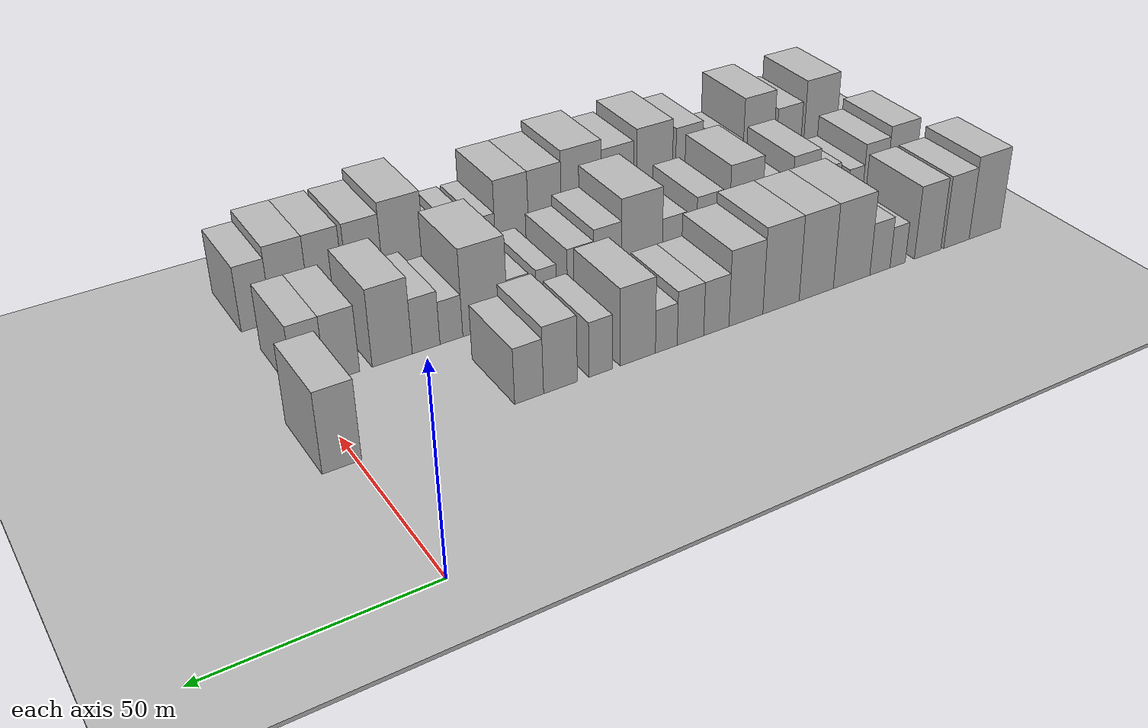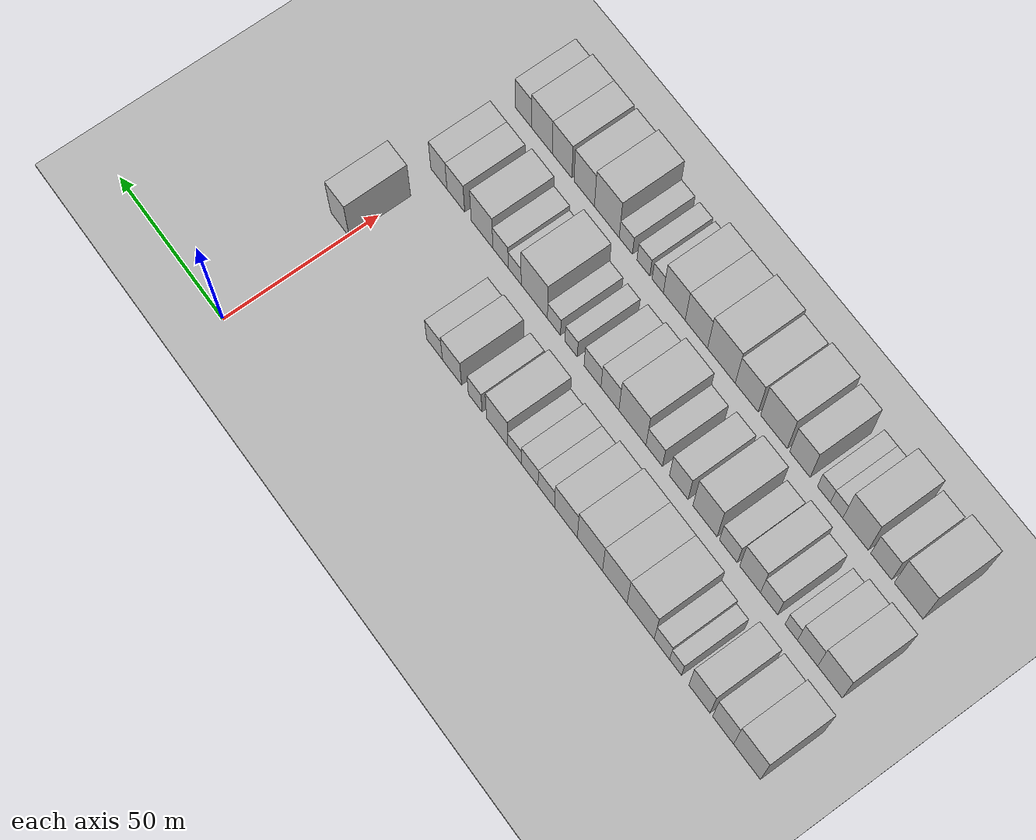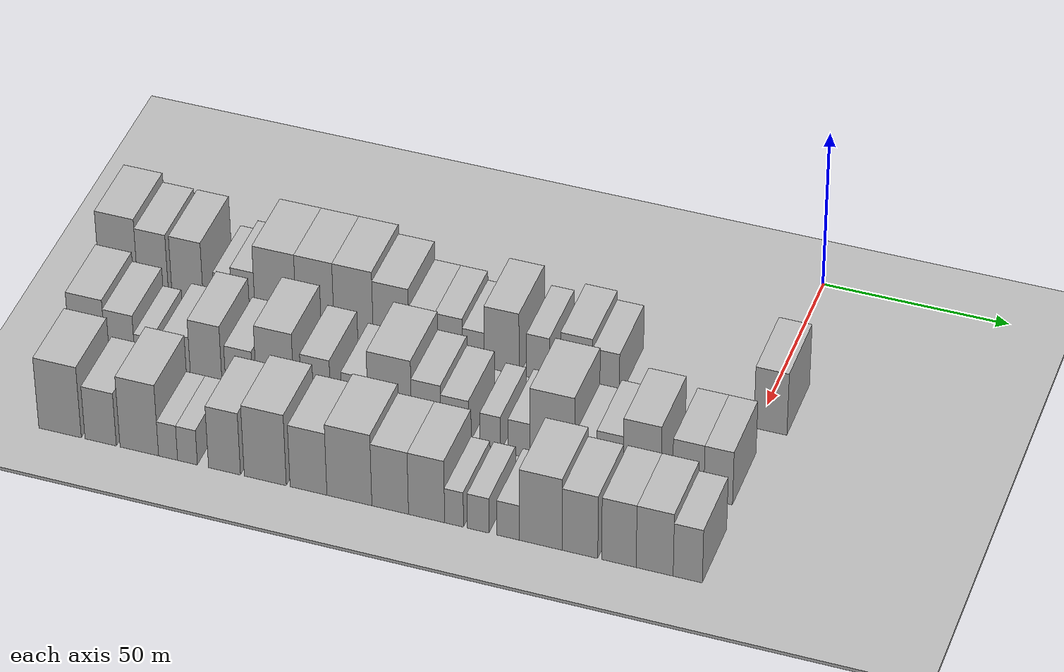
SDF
<sdf version="1.6">
 <world name="default">
  <include><name>ground_plane_1</name><uri>model://HANNAS_ground_plane</uri></include>
  <include>
   <name>ground_plane_2</name>
   <uri>model://HANNAS_ground_plane</uri>
   <pose>100 0 0  0 0 0</pose>
  </include>
  <model name="building_20">
   <static>1</static>
   <pose>50.0000 -173.5336 0 0.000000 0.000000 0.000000</pose>
   <link name="link">
    <pose>0 0 12.00 0 0 0</pose>
    <collision name="collision"><geometry><box><size>20.0000 10.8174 24.0000</size></box></geometry></collision>
    <visual name="visual">
     <cast_shadows>0</cast_shadows>
     <geometry><box><size>20.0000 10.8174 24.0000</size></box></geometry>
     <material>
      <script>
       <uri>model://HANNAS_wall/materials/scripts</uri>
       <uri>model://HANNAS_wall/materials/textures</uri>
       <name>vrc/HANNAS_wall</name>
      </script>
     </material>
    </visual>
   </link>
  </model>
  <model name="building_21">
   <static>1</static>
   <pose>50.0000 -163.8275 0 0.000000 0.000000 0.000000</pose>
   <link name="link">
    <pose>0 0 10.50 0 0 0</pose>
    <collision name="collision"><geometry><box><size>20.0000 8.5949 21.0000</size></box></geometry></collision>
    <visual name="visual">
     <cast_shadows>0</cast_shadows>
     <geometry><box><size>20.0000 8.5949 21.0000</size></box></geometry>
     <material>
      <script>
       <uri>model://HANNAS_wall/materials/scripts</uri>
       <uri>model://HANNAS_wall/materials/textures</uri>
       <name>vrc/HANNAS_wall</name>
      </script>
     </material>
    </visual>
   </link>
  </model>
  <model name="building_22">
   <static>1</static>
   <pose>50.0000 -154.1561 0 0.000000 0.000000 0.000000</pose>
   <link name="link">
    <pose>0 0 10.50 0 0 0</pose>
    <collision name="collision"><geometry><box><size>20.0000 8.7478 21.0000</size></box></geometry></collision>
    <visual name="visual">
     <cast_shadows>0</cast_shadows>
     <geometry><box><size>20.0000 8.7478 21.0000</size></box></geometry>
     <material>
      <script>
       <uri>model://HANNAS_wall/materials/scripts</uri>
       <uri>model://HANNAS_wall/materials/textures</uri>
       <name>vrc/HANNAS_wall</name>
      </script>
     </material>
    </visual>
   </link>
  </model>
  <model name="building_23">
   <static>1</static>
   <pose>50.0000 -144.3071 0 0.000000 0.000000 0.000000</pose>
   <link name="link">
    <pose>0 0 6.00 0 0 0</pose>
    <collision name="collision"><geometry><box><size>20.0000 4.9503 12.0000</size></box></geometry></collision>
    <visual name="visual">
     <cast_shadows>0</cast_shadows>
     <geometry><box><size>20.0000 4.9503 12.0000</size></box></geometry>
     <material>
      <script>
       <uri>model://HANNAS_wall/materials/scripts</uri>
       <uri>model://HANNAS_wall/materials/textures</uri>
       <name>vrc/HANNAS_wall</name>
      </script>
     </material>
    </visual>
   </link>
  </model>
  <model name="building_24">
   <static>1</static>
   <pose>50.0000 -138.6145 0 0.000000 0.000000 0.000000</pose>
   <link name="link">
    <pose>0 0 7.50 0 0 0</pose>
    <collision name="collision"><geometry><box><size>20.0000 6.4349 15.0000</size></box></geometry></collision>
    <visual name="visual">
     <cast_shadows>0</cast_shadows>
     <geometry><box><size>20.0000 6.4349 15.0000</size></box></geometry>
     <material>
      <script>
       <uri>model://HANNAS_wall/materials/scripts</uri>
       <uri>model://HANNAS_wall/materials/textures</uri>
       <name>vrc/HANNAS_wall</name>
      </script>
     </material>
    </visual>
   </link>
  </model>
  <model name="building_25">
   <static>1</static>
   <pose>50.0000 -129.6808 0 0.000000 0.000000 0.000000</pose>
   <link name="link">
    <pose>0 0 12.00 0 0 0</pose>
    <collision name="collision"><geometry><box><size>20.0000 11.4326 24.0000</size></box></geometry></collision>
    <visual name="visual">
     <cast_shadows>0</cast_shadows>
     <geometry><box><size>20.0000 11.4326 24.0000</size></box></geometry>
     <material>
      <script>
       <uri>model://HANNAS_wall/materials/scripts</uri>
       <uri>model://HANNAS_wall/materials/textures</uri>
       <name>vrc/HANNAS_wall</name>
      </script>
     </material>
    </visual>
   </link>
  </model>
  <model name="building_26">
   <static>1</static>
   <pose>50.0000 -118.7678 0 0.000000 0.000000 0.000000</pose>
   <link name="link">
    <pose>0 0 12.00 0 0 0</pose>
    <collision name="collision"><geometry><box><size>20.0000 10.3935 24.0000</size></box></geometry></collision>
    <visual name="visual">
     <cast_shadows>0</cast_shadows>
     <geometry><box><size>20.0000 10.3935 24.0000</size></box></geometry>
     <material>
      <script>
       <uri>model://HANNAS_wall/materials/scripts</uri>
       <uri>model://HANNAS_wall/materials/textures</uri>
       <name>vrc/HANNAS_wall</name>
      </script>
     </material>
    </visual>
   </link>
  </model>
  <model name="building_27">
   <static>1</static>
   <pose>50.0000 -108.1884 0 0.000000 0.000000 0.000000</pose>
   <link name="link">
    <pose>0 0 12.00 0 0 0</pose>
    <collision name="collision"><geometry><box><size>20.0000 10.7653 24.0000</size></box></geometry></collision>
    <visual name="visual">
     <cast_shadows>0</cast_shadows>
     <geometry><box><size>20.0000 10.7653 24.0000</size></box></geometry>
     <material>
      <script>
       <uri>model://HANNAS_wall/materials/scripts</uri>
       <uri>model://HANNAS_wall/materials/textures</uri>
       <name>vrc/HANNAS_wall</name>
      </script>
     </material>
    </visual>
   </link>
  </model>
  <model name="building_28">
   <static>1</static>
   <pose>50.0000 -97.9001 0 0.000000 0.000000 0.000000</pose>
   <link name="link">
    <pose>0 0 10.50 0 0 0</pose>
    <collision name="collision"><geometry><box><size>20.0000 9.8113 21.0000</size></box></geometry></collision>
    <visual name="visual">
     <cast_shadows>0</cast_shadows>
     <geometry><box><size>20.0000 9.8113 21.0000</size></box></geometry>
     <material>
      <script>
       <uri>model://HANNAS_wall/materials/scripts</uri>
       <uri>model://HANNAS_wall/materials/textures</uri>
       <name>vrc/HANNAS_wall</name>
      </script>
     </material>
    </visual>
   </link>
  </model>
  <model name="building_29">
   <static>1</static>
   <pose>50.0000 -89.4312 0 0.000000 0.000000 0.000000</pose>
   <link name="link">
    <pose>0 0 7.50 0 0 0</pose>
    <collision name="collision"><geometry><box><size>20.0000 7.1264 15.0000</size></box></geometry></collision>
    <visual name="visual">
     <cast_shadows>0</cast_shadows>
     <geometry><box><size>20.0000 7.1264 15.0000</size></box></geometry>
     <material>
      <script>
       <uri>model://HANNAS_wall/materials/scripts</uri>
       <uri>model://HANNAS_wall/materials/textures</uri>
       <name>vrc/HANNAS_wall</name>
      </script>
     </material>
    </visual>
   </link>
  </model>
  <model name="building_30">
   <static>1</static>
   <pose>50.0000 -82.1984 0 0.000000 0.000000 0.000000</pose>
   <link name="link">
    <pose>0 0 7.50 0 0 0</pose>
    <collision name="collision"><geometry><box><size>20.0000 7.3392 15.0000</size></box></geometry></collision>
    <visual name="visual">
     <cast_shadows>0</cast_shadows>
     <geometry><box><size>20.0000 7.3392 15.0000</size></box></geometry>
     <material>
      <script>
       <uri>model://HANNAS_wall/materials/scripts</uri>
       <uri>model://HANNAS_wall/materials/textures</uri>
       <name>vrc/HANNAS_wall</name>
      </script>
     </material>
    </visual>
   </link>
  </model>
  <model name="building_31">
   <static>1</static>
   <pose>50.0000 -75.5507 0 0.000000 0.000000 0.000000</pose>
   <link name="link">
    <pose>0 0 6.00 0 0 0</pose>
    <collision name="collision"><geometry><box><size>20.0000 5.9562 12.0000</size></box></geometry></collision>
    <visual name="visual">
     <cast_shadows>0</cast_shadows>
     <geometry><box><size>20.0000 5.9562 12.0000</size></box></geometry>
     <material>
      <script>
       <uri>model://HANNAS_wall/materials/scripts</uri>
       <uri>model://HANNAS_wall/materials/textures</uri>
       <name>vrc/HANNAS_wall</name>
      </script>
     </material>
    </visual>
   </link>
  </model>
  <model name="building_32">
   <static>1</static>
   <pose>50.0000 -67.8765 0 0.000000 0.000000 0.000000</pose>
   <link name="link">
    <pose>0 0 10.50 0 0 0</pose>
    <collision name="collision"><geometry><box><size>20.0000 9.3921 21.0000</size></box></geometry></collision>
    <visual name="visual">
     <cast_shadows>0</cast_shadows>
     <geometry><box><size>20.0000 9.3921 21.0000</size></box></geometry>
     <material>
      <script>
       <uri>model://HANNAS_wall/materials/scripts</uri>
       <uri>model://HANNAS_wall/materials/textures</uri>
       <name>vrc/HANNAS_wall</name>
      </script>
     </material>
    </visual>
   </link>
  </model>
  <model name="building_33">
   <static>1</static>
   <pose>50.0000 -58.1200 0 0.000000 0.000000 0.000000</pose>
   <link name="link">
    <pose>0 0 7.50 0 0 0</pose>
    <collision name="collision"><geometry><box><size>20.0000 6.1209 15.0000</size></box></geometry></collision>
    <visual name="visual">
     <cast_shadows>0</cast_shadows>
     <geometry><box><size>20.0000 6.1209 15.0000</size></box></geometry>
     <material>
      <script>
       <uri>model://HANNAS_wall/materials/scripts</uri>
       <uri>model://HANNAS_wall/materials/textures</uri>
       <name>vrc/HANNAS_wall</name>
      </script>
     </material>
    </visual>
   </link>
  </model>
  <model name="building_34">
   <static>1</static>
   <pose>50.0000 -47.7687 0 0.000000 0.000000 0.000000</pose>
   <link name="link">
    <pose>0 0 9.00 0 0 0</pose>
    <collision name="collision"><geometry><box><size>20.0000 8.5817 18.0000</size></box></geometry></collision>
    <visual name="visual">
     <cast_shadows>0</cast_shadows>
     <geometry><box><size>20.0000 8.5817 18.0000</size></box></geometry>
     <material>
      <script>
       <uri>model://HANNAS_wall/materials/scripts</uri>
       <uri>model://HANNAS_wall/materials/textures</uri>
       <name>vrc/HANNAS_wall</name>
      </script>
     </material>
    </visual>
   </link>
  </model>
  <model name="building_35">
   <static>1</static>
   <pose>50.0000 -39.8923 0 0.000000 0.000000 0.000000</pose>
   <link name="link">
    <pose>0 0 7.50 0 0 0</pose>
    <collision name="collision"><geometry><box><size>20.0000 7.1711 15.0000</size></box></geometry></collision>
    <visual name="visual">
     <cast_shadows>0</cast_shadows>
     <geometry><box><size>20.0000 7.1711 15.0000</size></box></geometry>
     <material>
      <script>
       <uri>model://HANNAS_wall/materials/scripts</uri>
       <uri>model://HANNAS_wall/materials/textures</uri>
       <name>vrc/HANNAS_wall</name>
      </script>
     </material>
    </visual>
   </link>
  </model>
  <model name="building_36">
   <static>1</static>
   <pose>50.0000 3.7379 0 0.000000 0.000000 0.000000</pose>
   <link name="link">
    <pose>0 0 10.50 0 0 0</pose>
    <collision name="collision"><geometry><box><size>20.0000 8.6964 21.0000</size></box></geometry></collision>
    <visual name="visual">
     <cast_shadows>0</cast_shadows>
     <geometry><box><size>20.0000 8.6964 21.0000</size></box></geometry>
     <material>
      <script>
       <uri>model://HANNAS_wall/materials/scripts</uri>
       <uri>model://HANNAS_wall/materials/textures</uri>
       <name>vrc/HANNAS_wall</name>
      </script>
     </material>
    </visual>
   </link>
  </model>
  <model name="building_90">
   <static>1</static>
   <pose>79.0000 -170.0122 0 0.000000 0.000000 0.000000</pose>
   <link name="link">
    <pose>0 0 10.50 0 0 0</pose>
    <collision name="collision"><geometry><box><size>20.0000 9.9377 21.0000</size></box></geometry></collision>
    <visual name="visual">
     <cast_shadows>0</cast_shadows>
     <geometry><box><size>20.0000 9.9377 21.0000</size></box></geometry>
     <material>
      <script>
       <uri>model://HANNAS_wall/materials/scripts</uri>
       <uri>model://HANNAS_wall/materials/textures</uri>
       <name>vrc/HANNAS_wall</name>
      </script>
     </material>
    </visual>
   </link>
  </model>
  <model name="building_91">
   <static>1</static>
   <pose>79.0000 -160.9604 0 0.000000 0.000000 0.000000</pose>
   <link name="link">
    <pose>0 0 9.00 0 0 0</pose>
    <collision name="collision"><geometry><box><size>20.0000 8.1657 18.0000</size></box></geometry></collision>
    <visual name="visual">
     <cast_shadows>0</cast_shadows>
     <geometry><box><size>20.0000 8.1657 18.0000</size></box></geometry>
     <material>
      <script>
       <uri>model://HANNAS_wall/materials/scripts</uri>
       <uri>model://HANNAS_wall/materials/textures</uri>
       <name>vrc/HANNAS_wall</name>
      </script>
     </material>
    </visual>
   </link>
  </model>
  <model name="building_92">
   <static>1</static>
   <pose>79.0000 -154.3462 0 0.000000 0.000000 0.000000</pose>
   <link name="link">
    <pose>0 0 6.00 0 0 0</pose>
    <collision name="collision"><geometry><box><size>20.0000 5.0628 12.0000</size></box></geometry></collision>
    <visual name="visual">
     <cast_shadows>0</cast_shadows>
     <geometry><box><size>20.0000 5.0628 12.0000</size></box></geometry>
     <material>
      <script>
       <uri>model://HANNAS_wall/materials/scripts</uri>
       <uri>model://HANNAS_wall/materials/textures</uri>
       <name>vrc/HANNAS_wall</name>
      </script>
     </material>
    </visual>
   </link>
  </model>
  <model name="building_93">
   <static>1</static>
   <pose>79.0000 -145.2571 0 0.000000 0.000000 0.000000</pose>
   <link name="link">
    <pose>0 0 7.50 0 0 0</pose>
    <collision name="collision"><geometry><box><size>20.0000 7.1153 15.0000</size></box></geometry></collision>
    <visual name="visual">
     <cast_shadows>0</cast_shadows>
     <geometry><box><size>20.0000 7.1153 15.0000</size></box></geometry>
     <material>
      <script>
       <uri>model://HANNAS_wall/materials/scripts</uri>
       <uri>model://HANNAS_wall/materials/textures</uri>
       <name>vrc/HANNAS_wall</name>
      </script>
     </material>
    </visual>
   </link>
  </model>
  <model name="building_94">
   <static>1</static>
   <pose>79.0000 -137.3871 0 0.000000 0.000000 0.000000</pose>
   <link name="link">
    <pose>0 0 10.50 0 0 0</pose>
    <collision name="collision"><geometry><box><size>20.0000 8.6247 21.0000</size></box></geometry></collision>
    <visual name="visual">
     <cast_shadows>0</cast_shadows>
     <geometry><box><size>20.0000 8.6247 21.0000</size></box></geometry>
     <material>
      <script>
       <uri>model://HANNAS_wall/materials/scripts</uri>
       <uri>model://HANNAS_wall/materials/textures</uri>
       <name>vrc/HANNAS_wall</name>
      </script>
     </material>
    </visual>
   </link>
  </model>
  <model name="building_95">
   <static>1</static>
   <pose>79.0000 -128.3656 0 0.000000 0.000000 0.000000</pose>
   <link name="link">
    <pose>0 0 7.50 0 0 0</pose>
    <collision name="collision"><geometry><box><size>20.0000 7.4185 15.0000</size></box></geometry></collision>
    <visual name="visual">
     <cast_shadows>0</cast_shadows>
     <geometry><box><size>20.0000 7.4185 15.0000</size></box></geometry>
     <material>
      <script>
       <uri>model://HANNAS_wall/materials/scripts</uri>
       <uri>model://HANNAS_wall/materials/textures</uri>
       <name>vrc/HANNAS_wall</name>
      </script>
     </material>
    </visual>
   </link>
  </model>
  <model name="building_96">
   <static>1</static>
   <pose>79.0000 -118.5570 0 0.000000 0.000000 0.000000</pose>
   <link name="link">
    <pose>0 0 12.00 0 0 0</pose>
    <collision name="collision"><geometry><box><size>20.0000 10.1986 24.0000</size></box></geometry></collision>
    <visual name="visual">
     <cast_shadows>0</cast_shadows>
     <geometry><box><size>20.0000 10.1986 24.0000</size></box></geometry>
     <material>
      <script>
       <uri>model://HANNAS_wall/materials/scripts</uri>
       <uri>model://HANNAS_wall/materials/textures</uri>
       <name>vrc/HANNAS_wall</name>
      </script>
     </material>
    </visual>
   </link>
  </model>
  <model name="building_97">
   <static>1</static>
   <pose>79.0000 -107.4997 0 0.000000 0.000000 0.000000</pose>
   <link name="link">
    <pose>0 0 9.00 0 0 0</pose>
    <collision name="collision"><geometry><box><size>20.0000 7.9160 18.0000</size></box></geometry></collision>
    <visual name="visual">
     <cast_shadows>0</cast_shadows>
     <geometry><box><size>20.0000 7.9160 18.0000</size></box></geometry>
     <material>
      <script>
       <uri>model://HANNAS_wall/materials/scripts</uri>
       <uri>model://HANNAS_wall/materials/textures</uri>
       <name>vrc/HANNAS_wall</name>
      </script>
     </material>
    </visual>
   </link>
  </model>
  <model name="building_98">
   <static>1</static>
   <pose>79.0000 -97.0122 0 0.000000 0.000000 0.000000</pose>
   <link name="link">
    <pose>0 0 7.50 0 0 0</pose>
    <collision name="collision"><geometry><box><size>20.0000 7.0590 15.0000</size></box></geometry></collision>
    <visual name="visual">
     <cast_shadows>0</cast_shadows>
     <geometry><box><size>20.0000 7.0590 15.0000</size></box></geometry>
     <material>
      <script>
       <uri>model://HANNAS_wall/materials/scripts</uri>
       <uri>model://HANNAS_wall/materials/textures</uri>
       <name>vrc/HANNAS_wall</name>
      </script>
     </material>
    </visual>
   </link>
  </model>
  <model name="building_99">
   <static>1</static>
   <pose>79.0000 -87.6273 0 0.000000 0.000000 0.000000</pose>
   <link name="link">
    <pose>0 0 12.00 0 0 0</pose>
    <collision name="collision"><geometry><box><size>20.0000 11.7108 24.0000</size></box></geometry></collision>
    <visual name="visual">
     <cast_shadows>0</cast_shadows>
     <geometry><box><size>20.0000 11.7108 24.0000</size></box></geometry>
     <material>
      <script>
       <uri>model://HANNAS_wall/materials/scripts</uri>
       <uri>model://HANNAS_wall/materials/textures</uri>
       <name>vrc/HANNAS_wall</name>
      </script>
     </material>
    </visual>
   </link>
  </model>
  <model name="building_100">
   <static>1</static>
   <pose>79.0000 -77.8664 0 0.000000 0.000000 0.000000</pose>
   <link name="link">
    <pose>0 0 9.00 0 0 0</pose>
    <collision name="collision"><geometry><box><size>20.0000 7.8110 18.0000</size></box></geometry></collision>
    <visual name="visual">
     <cast_shadows>0</cast_shadows>
     <geometry><box><size>20.0000 7.8110 18.0000</size></box></geometry>
     <material>
      <script>
       <uri>model://HANNAS_wall/materials/scripts</uri>
       <uri>model://HANNAS_wall/materials/textures</uri>
       <name>vrc/HANNAS_wall</name>
      </script>
     </material>
    </visual>
   </link>
  </model>
  <model name="building_101">
   <static>1</static>
   <pose>79.0000 -70.2612 0 0.000000 0.000000 0.000000</pose>
   <link name="link">
    <pose>0 0 7.50 0 0 0</pose>
    <collision name="collision"><geometry><box><size>20.0000 7.3996 15.0000</size></box></geometry></collision>
    <visual name="visual">
     <cast_shadows>0</cast_shadows>
     <geometry><box><size>20.0000 7.3996 15.0000</size></box></geometry>
     <material>
      <script>
       <uri>model://HANNAS_wall/materials/scripts</uri>
       <uri>model://HANNAS_wall/materials/textures</uri>
       <name>vrc/HANNAS_wall</name>
      </script>
     </material>
    </visual>
   </link>
  </model>
  <model name="building_102">
   <static>1</static>
   <pose>79.0000 -60.8543 0 0.000000 0.000000 0.000000</pose>
   <link name="link">
    <pose>0 0 6.00 0 0 0</pose>
    <collision name="collision"><geometry><box><size>20.0000 5.4141 12.0000</size></box></geometry></collision>
    <visual name="visual">
     <cast_shadows>0</cast_shadows>
     <geometry><box><size>20.0000 5.4141 12.0000</size></box></geometry>
     <material>
      <script>
       <uri>model://HANNAS_wall/materials/scripts</uri>
       <uri>model://HANNAS_wall/materials/textures</uri>
       <name>vrc/HANNAS_wall</name>
      </script>
     </material>
    </visual>
   </link>
  </model>
  <model name="building_103">
   <static>1</static>
   <pose>79.0000 -53.2362 0 0.000000 0.000000 0.000000</pose>
   <link name="link">
    <pose>0 0 6.00 0 0 0</pose>
    <collision name="collision"><geometry><box><size>20.0000 5.8221 12.0000</size></box></geometry></collision>
    <visual name="visual">
     <cast_shadows>0</cast_shadows>
     <geometry><box><size>20.0000 5.8221 12.0000</size></box></geometry>
     <material>
      <script>
       <uri>model://HANNAS_wall/materials/scripts</uri>
       <uri>model://HANNAS_wall/materials/textures</uri>
       <name>vrc/HANNAS_wall</name>
      </script>
     </material>
    </visual>
   </link>
  </model>
  <model name="building_104">
   <static>1</static>
   <pose>79.0000 -44.4544 0 0.000000 0.000000 0.000000</pose>
   <link name="link">
    <pose>0 0 12.00 0 0 0</pose>
    <collision name="collision"><geometry><box><size>20.0000 11.7417 24.0000</size></box></geometry></collision>
    <visual name="visual">
     <cast_shadows>0</cast_shadows>
     <geometry><box><size>20.0000 11.7417 24.0000</size></box></geometry>
     <material>
      <script>
       <uri>model://HANNAS_wall/materials/scripts</uri>
       <uri>model://HANNAS_wall/materials/textures</uri>
       <name>vrc/HANNAS_wall</name>
      </script>
     </material>
    </visual>
   </link>
  </model>
  <model name="building_105">
   <static>1</static>
   <pose>79.0000 -35.6649 0 0.000000 0.000000 0.000000</pose>
   <link name="link">
    <pose>0 0 6.00 0 0 0</pose>
    <collision name="collision"><geometry><box><size>20.0000 5.8372 12.0000</size></box></geometry></collision>
    <visual name="visual">
     <cast_shadows>0</cast_shadows>
     <geometry><box><size>20.0000 5.8372 12.0000</size></box></geometry>
     <material>
      <script>
       <uri>model://HANNAS_wall/materials/scripts</uri>
       <uri>model://HANNAS_wall/materials/textures</uri>
       <name>vrc/HANNAS_wall</name>
      </script>
     </material>
    </visual>
   </link>
  </model>
  <model name="building_106">
   <static>1</static>
   <pose>79.0000 -29.2673 0 0.000000 0.000000 0.000000</pose>
   <link name="link">
    <pose>0 0 7.50 0 0 0</pose>
    <collision name="collision"><geometry><box><size>20.0000 6.9580 15.0000</size></box></geometry></collision>
    <visual name="visual">
     <cast_shadows>0</cast_shadows>
     <geometry><box><size>20.0000 6.9580 15.0000</size></box></geometry>
     <material>
      <script>
       <uri>model://HANNAS_wall/materials/scripts</uri>
       <uri>model://HANNAS_wall/materials/textures</uri>
       <name>vrc/HANNAS_wall</name>
      </script>
     </material>
    </visual>
   </link>
  </model>
  <model name="building_107">
   <static>1</static>
   <pose>79.0000 -20.8536 0 0.000000 0.000000 0.000000</pose>
   <link name="link">
    <pose>0 0 10.50 0 0 0</pose>
    <collision name="collision"><geometry><box><size>20.0000 9.8694 21.0000</size></box></geometry></collision>
    <visual name="visual">
     <cast_shadows>0</cast_shadows>
     <geometry><box><size>20.0000 9.8694 21.0000</size></box></geometry>
     <material>
      <script>
       <uri>model://HANNAS_wall/materials/scripts</uri>
       <uri>model://HANNAS_wall/materials/textures</uri>
       <name>vrc/HANNAS_wall</name>
      </script>
     </material>
    </visual>
   </link>
  </model>
  <model name="building_108">
   <static>1</static>
   <pose>79.0000 -8.8463 0 0.000000 0.000000 0.000000</pose>
   <link name="link">
    <pose>0 0 9.00 0 0 0</pose>
    <collision name="collision"><geometry><box><size>20.0000 8.1451 18.0000</size></box></geometry></collision>
    <visual name="visual">
     <cast_shadows>0</cast_shadows>
     <geometry><box><size>20.0000 8.1451 18.0000</size></box></geometry>
     <material>
      <script>
       <uri>model://HANNAS_wall/materials/scripts</uri>
       <uri>model://HANNAS_wall/materials/textures</uri>
       <name>vrc/HANNAS_wall</name>
      </script>
     </material>
    </visual>
   </link>
  </model>
  <model name="building_109">
   <static>1</static>
   <pose>79.0000 -1.0233 0 0.000000 0.000000 0.000000</pose>
   <link name="link">
    <pose>0 0 9.00 0 0 0</pose>
    <collision name="collision"><geometry><box><size>20.0000 7.5008 18.0000</size></box></geometry></collision>
    <visual name="visual">
     <cast_shadows>0</cast_shadows>
     <geometry><box><size>20.0000 7.5008 18.0000</size></box></geometry>
     <material>
      <script>
       <uri>model://HANNAS_wall/materials/scripts</uri>
       <uri>model://HANNAS_wall/materials/textures</uri>
       <name>vrc/HANNAS_wall</name>
      </script>
     </material>
    </visual>
   </link>
  </model>
  <model name="building_169">
   <static>1</static>
   <pose>108.0000 -165.4853 0 0.000000 0.000000 0.000000</pose>
   <link name="link">
    <pose>0 0 12.00 0 0 0</pose>
    <collision name="collision"><geometry><box><size>20.0000 11.5781 24.0000</size></box></geometry></collision>
    <visual name="visual">
     <cast_shadows>0</cast_shadows>
     <geometry><box><size>20.0000 11.5781 24.0000</size></box></geometry>
     <material>
      <script>
       <uri>model://HANNAS_wall/materials/scripts</uri>
       <uri>model://HANNAS_wall/materials/textures</uri>
       <name>vrc/HANNAS_wall</name>
      </script>
     </material>
    </visual>
   </link>
  </model>
  <model name="building_170">
   <static>1</static>
   <pose>108.0000 -154.4366 0 0.000000 0.000000 0.000000</pose>
   <link name="link">
    <pose>0 0 9.00 0 0 0</pose>
    <collision name="collision"><geometry><box><size>20.0000 8.5194 18.0000</size></box></geometry></collision>
    <visual name="visual">
     <cast_shadows>0</cast_shadows>
     <geometry><box><size>20.0000 8.5194 18.0000</size></box></geometry>
     <material>
      <script>
       <uri>model://HANNAS_wall/materials/scripts</uri>
       <uri>model://HANNAS_wall/materials/textures</uri>
       <name>vrc/HANNAS_wall</name>
      </script>
     </material>
    </visual>
   </link>
  </model>
  <model name="building_171">
   <static>1</static>
   <pose>108.0000 -143.9608 0 0.000000 0.000000 0.000000</pose>
   <link name="link">
    <pose>0 0 12.00 0 0 0</pose>
    <collision name="collision"><geometry><box><size>20.0000 10.4321 24.0000</size></box></geometry></collision>
    <visual name="visual">
     <cast_shadows>0</cast_shadows>
     <geometry><box><size>20.0000 10.4321 24.0000</size></box></geometry>
     <material>
      <script>
       <uri>model://HANNAS_wall/materials/scripts</uri>
       <uri>model://HANNAS_wall/materials/textures</uri>
       <name>vrc/HANNAS_wall</name>
      </script>
     </material>
    </visual>
   </link>
  </model>
  <model name="building_172">
   <static>1</static>
   <pose>108.0000 -136.1779 0 0.000000 0.000000 0.000000</pose>
   <link name="link">
    <pose>0 0 6.00 0 0 0</pose>
    <collision name="collision"><geometry><box><size>20.0000 5.1337 12.0000</size></box></geometry></collision>
    <visual name="visual">
     <cast_shadows>0</cast_shadows>
     <geometry><box><size>20.0000 5.1337 12.0000</size></box></geometry>
     <material>
      <script>
       <uri>model://HANNAS_wall/materials/scripts</uri>
       <uri>model://HANNAS_wall/materials/textures</uri>
       <name>vrc/HANNAS_wall</name>
      </script>
     </material>
    </visual>
   </link>
  </model>
  <model name="building_173">
   <static>1</static>
   <pose>108.0000 -130.9513 0 0.000000 0.000000 0.000000</pose>
   <link name="link">
    <pose>0 0 6.00 0 0 0</pose>
    <collision name="collision"><geometry><box><size>20.0000 5.3193 12.0000</size></box></geometry></collision>
    <visual name="visual">
     <cast_shadows>0</cast_shadows>
     <geometry><box><size>20.0000 5.3193 12.0000</size></box></geometry>
     <material>
      <script>
       <uri>model://HANNAS_wall/materials/scripts</uri>
       <uri>model://HANNAS_wall/materials/textures</uri>
       <name>vrc/HANNAS_wall</name>
      </script>
     </material>
    </visual>
   </link>
  </model>
  <model name="building_174">
   <static>1</static>
   <pose>108.0000 -121.0075 0 0.000000 0.000000 0.000000</pose>
   <link name="link">
    <pose>0 0 10.50 0 0 0</pose>
    <collision name="collision"><geometry><box><size>20.0000 8.5684 21.0000</size></box></geometry></collision>
    <visual name="visual">
     <cast_shadows>0</cast_shadows>
     <geometry><box><size>20.0000 8.5684 21.0000</size></box></geometry>
     <material>
      <script>
       <uri>model://HANNAS_wall/materials/scripts</uri>
       <uri>model://HANNAS_wall/materials/textures</uri>
       <name>vrc/HANNAS_wall</name>
      </script>
     </material>
    </visual>
   </link>
  </model>
  <model name="building_175">
   <static>1</static>
   <pose>108.0000 -110.1050 0 0.000000 0.000000 0.000000</pose>
   <link name="link">
    <pose>0 0 12.00 0 0 0</pose>
    <collision name="collision"><geometry><box><size>20.0000 11.2366 24.0000</size></box></geometry></collision>
    <visual name="visual">
     <cast_shadows>0</cast_shadows>
     <geometry><box><size>20.0000 11.2366 24.0000</size></box></geometry>
     <material>
      <script>
       <uri>model://HANNAS_wall/materials/scripts</uri>
       <uri>model://HANNAS_wall/materials/textures</uri>
       <name>vrc/HANNAS_wall</name>
      </script>
     </material>
    </visual>
   </link>
  </model>
  <model name="building_176">
   <static>1</static>
   <pose>108.0000 -98.5903 0 0.000000 0.000000 0.000000</pose>
   <link name="link">
    <pose>0 0 10.50 0 0 0</pose>
    <collision name="collision"><geometry><box><size>20.0000 9.7928 21.0000</size></box></geometry></collision>
    <visual name="visual">
     <cast_shadows>0</cast_shadows>
     <geometry><box><size>20.0000 9.7928 21.0000</size></box></geometry>
     <material>
      <script>
       <uri>model://HANNAS_wall/materials/scripts</uri>
       <uri>model://HANNAS_wall/materials/textures</uri>
       <name>vrc/HANNAS_wall</name>
      </script>
     </material>
    </visual>
   </link>
  </model>
  <model name="building_177">
   <static>1</static>
   <pose>108.0000 -87.7439 0 0.000000 0.000000 0.000000</pose>
   <link name="link">
    <pose>0 0 12.00 0 0 0</pose>
    <collision name="collision"><geometry><box><size>20.0000 11.9000 24.0000</size></box></geometry></collision>
    <visual name="visual">
     <cast_shadows>0</cast_shadows>
     <geometry><box><size>20.0000 11.9000 24.0000</size></box></geometry>
     <material>
      <script>
       <uri>model://HANNAS_wall/materials/scripts</uri>
       <uri>model://HANNAS_wall/materials/textures</uri>
       <name>vrc/HANNAS_wall</name>
      </script>
     </material>
    </visual>
   </link>
  </model>
  <model name="building_178">
   <static>1</static>
   <pose>108.0000 -76.9661 0 0.000000 0.000000 0.000000</pose>
   <link name="link">
    <pose>0 0 10.50 0 0 0</pose>
    <collision name="collision"><geometry><box><size>20.0000 9.6557 21.0000</size></box></geometry></collision>
    <visual name="visual">
     <cast_shadows>0</cast_shadows>
     <geometry><box><size>20.0000 9.6557 21.0000</size></box></geometry>
     <material>
      <script>
       <uri>model://HANNAS_wall/materials/scripts</uri>
       <uri>model://HANNAS_wall/materials/textures</uri>
       <name>vrc/HANNAS_wall</name>
      </script>
     </material>
    </visual>
   </link>
  </model>
  <model name="building_179">
   <static>1</static>
   <pose>108.0000 -67.3838 0 0.000000 0.000000 0.000000</pose>
   <link name="link">
    <pose>0 0 10.50 0 0 0</pose>
    <collision name="collision"><geometry><box><size>20.0000 9.5088 21.0000</size></box></geometry></collision>
    <visual name="visual">
     <cast_shadows>0</cast_shadows>
     <geometry><box><size>20.0000 9.5088 21.0000</size></box></geometry>
     <material>
      <script>
       <uri>model://HANNAS_wall/materials/scripts</uri>
       <uri>model://HANNAS_wall/materials/textures</uri>
       <name>vrc/HANNAS_wall</name>
      </script>
     </material>
    </visual>
   </link>
  </model>
  <model name="building_180">
   <static>1</static>
   <pose>108.0000 -60.1649 0 0.000000 0.000000 0.000000</pose>
   <link name="link">
    <pose>0 0 6.00 0 0 0</pose>
    <collision name="collision"><geometry><box><size>20.0000 4.9290 12.0000</size></box></geometry></collision>
    <visual name="visual">
     <cast_shadows>0</cast_shadows>
     <geometry><box><size>20.0000 4.9290 12.0000</size></box></geometry>
     <material>
      <script>
       <uri>model://HANNAS_wall/materials/scripts</uri>
       <uri>model://HANNAS_wall/materials/textures</uri>
       <name>vrc/HANNAS_wall</name>
      </script>
     </material>
    </visual>
   </link>
  </model>
  <model name="building_181">
   <static>1</static>
   <pose>108.0000 -53.8580 0 0.000000 0.000000 0.000000</pose>
   <link name="link">
    <pose>0 0 6.00 0 0 0</pose>
    <collision name="collision"><geometry><box><size>20.0000 5.6847 12.0000</size></box></geometry></collision>
    <visual name="visual">
     <cast_shadows>0</cast_shadows>
     <geometry><box><size>20.0000 5.6847 12.0000</size></box></geometry>
     <material>
      <script>
       <uri>model://HANNAS_wall/materials/scripts</uri>
       <uri>model://HANNAS_wall/materials/textures</uri>
       <name>vrc/HANNAS_wall</name>
      </script>
     </material>
    </visual>
   </link>
  </model>
  <model name="building_182">
   <static>1</static>
   <pose>108.0000 -46.0708 0 0.000000 0.000000 0.000000</pose>
   <link name="link">
    <pose>0 0 6.00 0 0 0</pose>
    <collision name="collision"><geometry><box><size>20.0000 5.8897 12.0000</size></box></geometry></collision>
    <visual name="visual">
     <cast_shadows>0</cast_shadows>
     <geometry><box><size>20.0000 5.8897 12.0000</size></box></geometry>
     <material>
      <script>
       <uri>model://HANNAS_wall/materials/scripts</uri>
       <uri>model://HANNAS_wall/materials/textures</uri>
       <name>vrc/HANNAS_wall</name>
      </script>
     </material>
    </visual>
   </link>
  </model>
  <model name="building_183">
   <static>1</static>
   <pose>108.0000 -37.5903 0 0.000000 0.000000 0.000000</pose>
   <link name="link">
    <pose>0 0 12.00 0 0 0</pose>
    <collision name="collision"><geometry><box><size>20.0000 11.0714 24.0000</size></box></geometry></collision>
    <visual name="visual">
     <cast_shadows>0</cast_shadows>
     <geometry><box><size>20.0000 11.0714 24.0000</size></box></geometry>
     <material>
      <script>
       <uri>model://HANNAS_wall/materials/scripts</uri>
       <uri>model://HANNAS_wall/materials/textures</uri>
       <name>vrc/HANNAS_wall</name>
      </script>
     </material>
    </visual>
   </link>
  </model>
  <model name="building_184">
   <static>1</static>
   <pose>108.0000 -27.4459 0 0.000000 0.000000 0.000000</pose>
   <link name="link">
    <pose>0 0 10.50 0 0 0</pose>
    <collision name="collision"><geometry><box><size>20.0000 9.2173 21.0000</size></box></geometry></collision>
    <visual name="visual">
     <cast_shadows>0</cast_shadows>
     <geometry><box><size>20.0000 9.2173 21.0000</size></box></geometry>
     <material>
      <script>
       <uri>model://HANNAS_wall/materials/scripts</uri>
       <uri>model://HANNAS_wall/materials/textures</uri>
       <name>vrc/HANNAS_wall</name>
      </script>
     </material>
    </visual>
   </link>
  </model>
  <model name="building_185">
   <static>1</static>
   <pose>108.0000 -17.3998 0 0.000000 0.000000 0.000000</pose>
   <link name="link">
    <pose>0 0 10.50 0 0 0</pose>
    <collision name="collision"><geometry><box><size>20.0000 8.8751 21.0000</size></box></geometry></collision>
    <visual name="visual">
     <cast_shadows>0</cast_shadows>
     <geometry><box><size>20.0000 8.8751 21.0000</size></box></geometry>
     <material>
      <script>
       <uri>model://HANNAS_wall/materials/scripts</uri>
       <uri>model://HANNAS_wall/materials/textures</uri>
       <name>vrc/HANNAS_wall</name>
      </script>
     </material>
    </visual>
   </link>
  </model>
  <model name="building_186">
   <static>1</static>
   <pose>108.0000 -8.2135 0 0.000000 0.000000 0.000000</pose>
   <link name="link">
    <pose>0 0 10.50 0 0 0</pose>
    <collision name="collision"><geometry><box><size>20.0000 9.4975 21.0000</size></box></geometry></collision>
    <visual name="visual">
     <cast_shadows>0</cast_shadows>
     <geometry><box><size>20.0000 9.4975 21.0000</size></box></geometry>
     <material>
      <script>
       <uri>model://HANNAS_wall/materials/scripts</uri>
       <uri>model://HANNAS_wall/materials/textures</uri>
       <name>vrc/HANNAS_wall</name>
      </script>
     </material>
    </visual>
   </link>
  </model>
  <model name="building_187">
   <static>1</static>
   <pose>108.0000 0.2643 0 0.000000 0.000000 0.000000</pose>
   <link name="link">
    <pose>0 0 9.00 0 0 0</pose>
    <collision name="collision"><geometry><box><size>20.0000 7.4581 18.0000</size></box></geometry></collision>
    <visual name="visual">
     <cast_shadows>0</cast_shadows>
     <geometry><box><size>20.0000 7.4581 18.0000</size></box></geometry>
     <material>
      <script>
       <uri>model://HANNAS_wall/materials/scripts</uri>
       <uri>model://HANNAS_wall/materials/textures</uri>
       <name>vrc/HANNAS_wall</name>
      </script>
     </material>
    </visual>
   </link>
  </model>
 </world>
</sdf>
